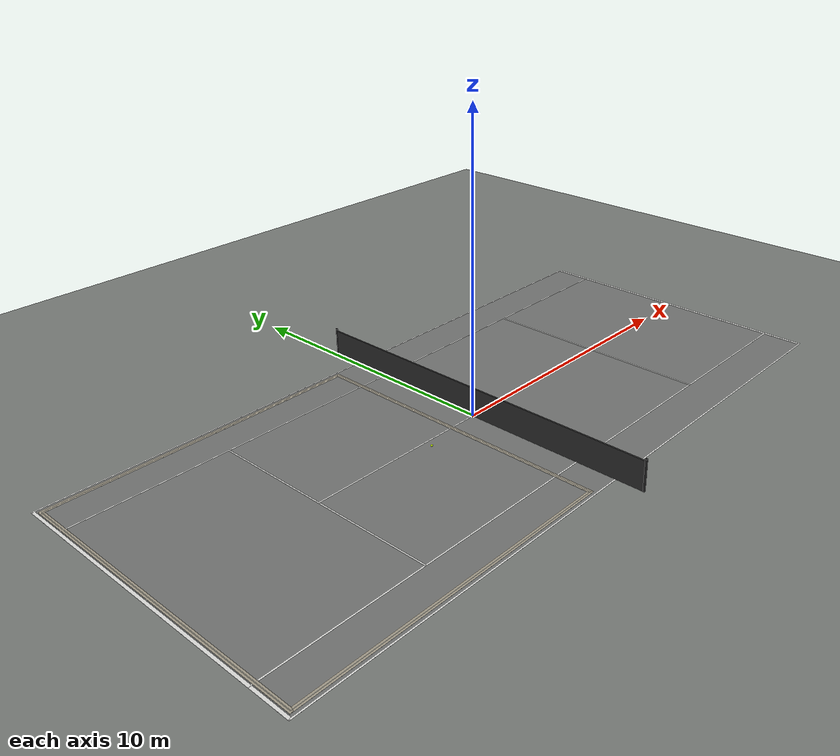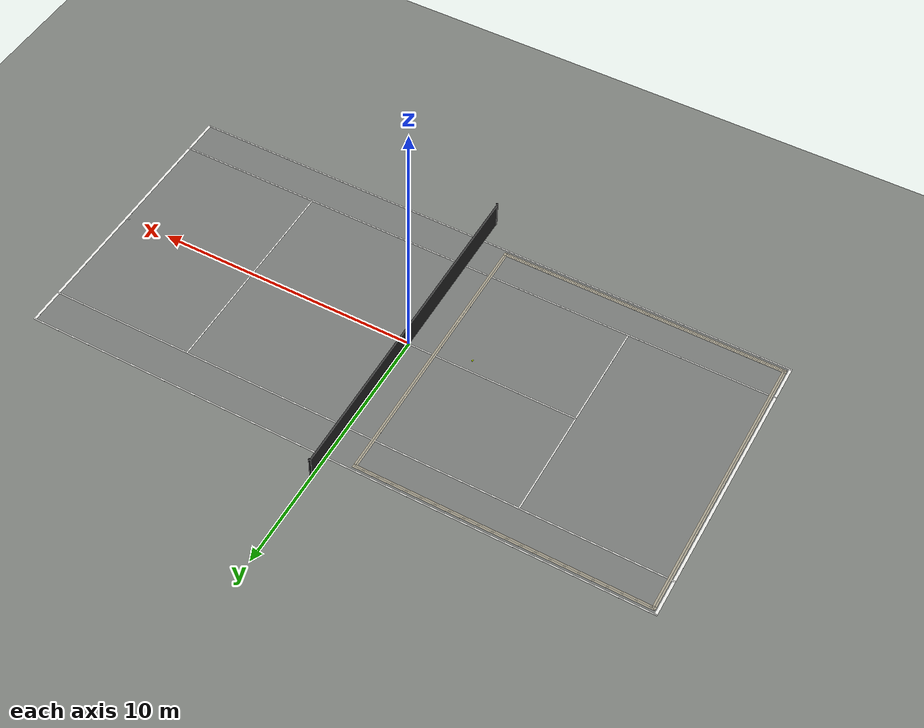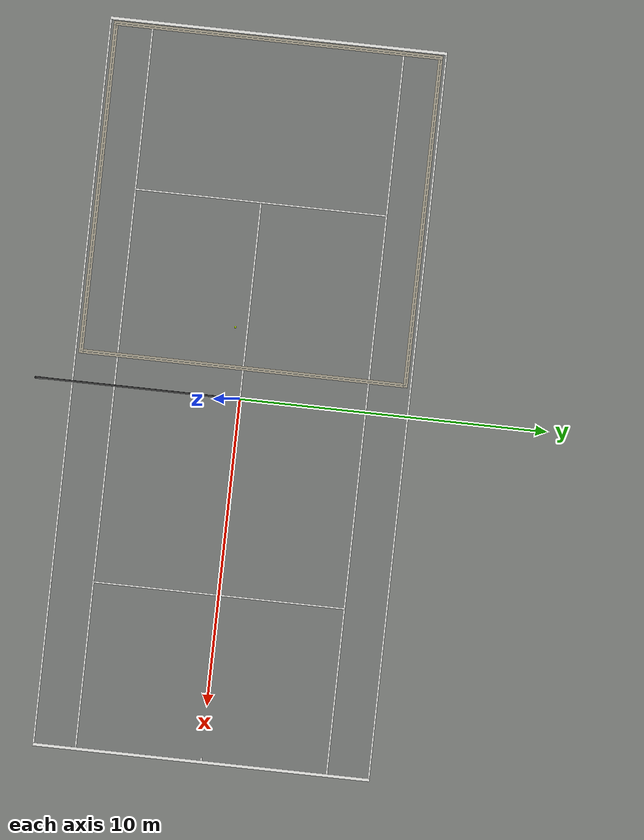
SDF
<sdf version="1.6">
 <world name="pickup_test_world">
  <model name="ground_plane">
   <static>true</static>
   <link name="link">
    <collision name="collision">
     <geometry><plane><normal>0 0 1</normal><size>100 100</size></plane></geometry>
     <surface>
      <contact><collide_bitmask>0xffff</collide_bitmask></contact>
      <friction><ode><mu>0.63</mu><mu2>0.63</mu2></ode></friction>
     </surface>
    </collision>
    <visual name="visual">
     <cast_shadows>false</cast_shadows>
     <geometry><plane><normal>0 0 1</normal><size>100 100</size></plane></geometry>
     <material>
      <ambient>0.463 0.474 0.460 1</ambient>
      <diffuse>0.463 0.474 0.460 1</diffuse>
      <specular>0 0 0 1</specular>
     </material>
    </visual>
   </link>
  </model>
  <model name="tennis_net">
   <static>true</static>
   <link name="net_link">
    <collision name="net_c">
     <pose>0 0 0.5 0 0 0</pose>
     <geometry><box><size>0.05 12.8 1.0</size></box></geometry>
    </collision>
    <visual name="net_v">
     <pose>0 0 0.5 0 0 0</pose>
     <geometry><box><size>0.05 12.8 1.0</size></box></geometry>
     <material><ambient>0.15 0.15 0.15 1</ambient><diffuse>0.2 0.2 0.2 1</diffuse></material>
    </visual>
    <collision name="post_l_c">
     <pose>0 6.4 0.535 0 0 0</pose>
     <geometry><cylinder><radius>0.04</radius><length>1.07</length></cylinder></geometry>
    </collision>
    <visual name="post_l_v">
     <pose>0 6.4 0.535 0 0 0</pose>
     <geometry><cylinder><radius>0.04</radius><length>1.07</length></cylinder></geometry>
     <material><ambient>0.1 0.1 0.1 1</ambient><diffuse>0.1 0.1 0.1 1</diffuse></material>
    </visual>
    <collision name="post_r_c">
     <pose>0 -6.4 0.535 0 0 0</pose>
     <geometry><cylinder><radius>0.04</radius><length>1.07</length></cylinder></geometry>
    </collision>
    <visual name="post_r_v">
     <pose>0 -6.4 0.535 0 0 0</pose>
     <geometry><cylinder><radius>0.04</radius><length>1.07</length></cylinder></geometry>
     <material><ambient>0.1 0.1 0.1 1</ambient><diffuse>0.1 0.1 0.1 1</diffuse></material>
    </visual>
   </link>
  </model>
  <model name="indoor_court">
   <static>true</static>
   <link name="court_link">
    <visual name="court_surface">
     <pose>0.0000 0.0000 0.0002 0 0 0</pose>
     <cast_shadows>false</cast_shadows>
     <geometry><box><size>23.7700 10.9700 0.0004</size></box></geometry>
     <material>
      <ambient>0.442 0.449 0.442 1</ambient>
      <diffuse>0.442 0.449 0.442 1</diffuse>
      <specular>0 0 0 1</specular>
     </material>
    </visual>
    <visual name="line_baseline_m1">
     <pose>-11.8350 0.0000 0.0006 0 0 0</pose>
     <cast_shadows>false</cast_shadows>
     <geometry><box><size>0.1000 10.9700 0.0004</size></box></geometry>
     <material>
      <ambient>0.866 0.866 0.855 1</ambient>
      <diffuse>0.866 0.866 0.855 1</diffuse>
      <specular>0 0 0 1</specular>
     </material>
    </visual>
    <visual name="line_service_m1">
     <pose>-6.4000 0.0000 0.0006 0 0 0</pose>
     <cast_shadows>false</cast_shadows>
     <geometry><box><size>0.0500 8.2300 0.0004</size></box></geometry>
     <material>
      <ambient>0.866 0.866 0.855 1</ambient>
      <diffuse>0.866 0.866 0.855 1</diffuse>
      <specular>0 0 0 1</specular>
     </material>
    </visual>
    <visual name="line_baseline_1">
     <pose>11.8350 0.0000 0.0006 0 0 0</pose>
     <cast_shadows>false</cast_shadows>
     <geometry><box><size>0.1000 10.9700 0.0004</size></box></geometry>
     <material>
      <ambient>0.866 0.866 0.855 1</ambient>
      <diffuse>0.866 0.866 0.855 1</diffuse>
      <specular>0 0 0 1</specular>
     </material>
    </visual>
    <visual name="line_service_1">
     <pose>6.4000 0.0000 0.0006 0 0 0</pose>
     <cast_shadows>false</cast_shadows>
     <geometry><box><size>0.0500 8.2300 0.0004</size></box></geometry>
     <material>
      <ambient>0.866 0.866 0.855 1</ambient>
      <diffuse>0.866 0.866 0.855 1</diffuse>
      <specular>0 0 0 1</specular>
     </material>
    </visual>
    <visual name="line_doubles_m1">
     <pose>0.0000 -5.4600 0.0006 0 0 0</pose>
     <cast_shadows>false</cast_shadows>
     <geometry><box><size>23.7700 0.0500 0.0004</size></box></geometry>
     <material>
      <ambient>0.866 0.866 0.855 1</ambient>
      <diffuse>0.866 0.866 0.855 1</diffuse>
      <specular>0 0 0 1</specular>
     </material>
    </visual>
    <visual name="line_singles_m1">
     <pose>0.0000 -4.0900 0.0006 0 0 0</pose>
     <cast_shadows>false</cast_shadows>
     <geometry><box><size>23.7700 0.0500 0.0004</size></box></geometry>
     <material>
      <ambient>0.866 0.866 0.855 1</ambient>
      <diffuse>0.866 0.866 0.855 1</diffuse>
      <specular>0 0 0 1</specular>
     </material>
    </visual>
    <visual name="line_doubles_1">
     <pose>0.0000 5.4600 0.0006 0 0 0</pose>
     <cast_shadows>false</cast_shadows>
     <geometry><box><size>23.7700 0.0500 0.0004</size></box></geometry>
     <material>
      <ambient>0.866 0.866 0.855 1</ambient>
      <diffuse>0.866 0.866 0.855 1</diffuse>
      <specular>0 0 0 1</specular>
     </material>
    </visual>
    <visual name="line_singles_1">
     <pose>0.0000 4.0900 0.0006 0 0 0</pose>
     <cast_shadows>false</cast_shadows>
     <geometry><box><size>23.7700 0.0500 0.0004</size></box></geometry>
     <material>
      <ambient>0.866 0.866 0.855 1</ambient>
      <diffuse>0.866 0.866 0.855 1</diffuse>
      <specular>0 0 0 1</specular>
     </material>
    </visual>
    <visual name="line_center_service">
     <pose>0.0000 0.0000 0.0006 0 0 0</pose>
     <cast_shadows>false</cast_shadows>
     <geometry><box><size>12.8000 0.0500 0.0004</size></box></geometry>
     <material>
      <ambient>0.866 0.866 0.855 1</ambient>
      <diffuse>0.866 0.866 0.855 1</diffuse>
      <specular>0 0 0 1</specular>
     </material>
    </visual>
    <visual name="line_center_mark_m1">
     <pose>-11.7350 0.0000 0.0006 0 0 0</pose>
     <cast_shadows>false</cast_shadows>
     <geometry><box><size>0.1000 0.0500 0.0004</size></box></geometry>
     <material>
      <ambient>0.866 0.866 0.855 1</ambient>
      <diffuse>0.866 0.866 0.855 1</diffuse>
      <specular>0 0 0 1</specular>
     </material>
    </visual>
    <visual name="line_center_mark_1">
     <pose>11.7350 0.0000 0.0006 0 0 0</pose>
     <cast_shadows>false</cast_shadows>
     <geometry><box><size>0.1000 0.0500 0.0004</size></box></geometry>
     <material>
      <ambient>0.866 0.866 0.855 1</ambient>
      <diffuse>0.866 0.866 0.855 1</diffuse>
      <specular>0 0 0 1</specular>
     </material>
    </visual>
    <visual name="yarn_baseline">
     <pose>-11.6850 0.0000 0.0007 0 0 0</pose>
     <cast_shadows>false</cast_shadows>
     <geometry><box><size>0.0140 10.5840 0.0010</size></box></geometry>
     <material>
      <ambient>0.845 0.848 0.784 1</ambient>
      <diffuse>0.845 0.848 0.784 1</diffuse>
      <specular>0 0 0 1</specular>
     </material>
    </visual>
    <visual name="yarn_halo_baseline">
     <pose>-11.6850 0.0000 0.0005 0 0 0</pose>
     <cast_shadows>false</cast_shadows>
     <geometry><box><size>0.1400 10.7100 0.0010</size></box></geometry>
     <material>
      <ambient>0.627 0.600 0.531 1</ambient>
      <diffuse>0.627 0.600 0.531 1</diffuse>
      <specular>0 0 0 1</specular>
     </material>
    </visual>
    <visual name="yarn_left">
     <pose>-6.3425 5.2850 0.0007 0 0 0</pose>
     <cast_shadows>false</cast_shadows>
     <geometry><box><size>10.6990 0.0140 0.0010</size></box></geometry>
     <material>
      <ambient>0.845 0.848 0.784 1</ambient>
      <diffuse>0.845 0.848 0.784 1</diffuse>
      <specular>0 0 0 1</specular>
     </material>
    </visual>
    <visual name="yarn_halo_left">
     <pose>-6.3425 5.2850 0.0005 0 0 0</pose>
     <cast_shadows>false</cast_shadows>
     <geometry><box><size>10.8250 0.1400 0.0010</size></box></geometry>
     <material>
      <ambient>0.627 0.600 0.531 1</ambient>
      <diffuse>0.627 0.600 0.531 1</diffuse>
      <specular>0 0 0 1</specular>
     </material>
    </visual>
    <visual name="yarn_right">
     <pose>-6.3425 -5.2850 0.0007 0 0 0</pose>
     <cast_shadows>false</cast_shadows>
     <geometry><box><size>10.6990 0.0140 0.0010</size></box></geometry>
     <material>
      <ambient>0.845 0.848 0.784 1</ambient>
      <diffuse>0.845 0.848 0.784 1</diffuse>
      <specular>0 0 0 1</specular>
     </material>
    </visual>
    <visual name="yarn_halo_right">
     <pose>-6.3425 -5.2850 0.0005 0 0 0</pose>
     <cast_shadows>false</cast_shadows>
     <geometry><box><size>10.8250 0.1400 0.0010</size></box></geometry>
     <material>
      <ambient>0.627 0.600 0.531 1</ambient>
      <diffuse>0.627 0.600 0.531 1</diffuse>
      <specular>0 0 0 1</specular>
     </material>
    </visual>
    <visual name="yarn_net">
     <pose>-1.0000 0.0000 0.0007 0 0 0</pose>
     <cast_shadows>false</cast_shadows>
     <geometry><box><size>0.0140 10.5840 0.0010</size></box></geometry>
     <material>
      <ambient>0.845 0.848 0.784 1</ambient>
      <diffuse>0.845 0.848 0.784 1</diffuse>
      <specular>0 0 0 1</specular>
     </material>
    </visual>
    <visual name="yarn_halo_net">
     <pose>-1.0000 0.0000 0.0005 0 0 0</pose>
     <cast_shadows>false</cast_shadows>
     <geometry><box><size>0.1400 10.7100 0.0010</size></box></geometry>
     <material>
      <ambient>0.627 0.600 0.531 1</ambient>
      <diffuse>0.627 0.600 0.531 1</diffuse>
      <specular>0 0 0 1</specular>
     </material>
    </visual>
   </link>
  </model>
  <model name="ball_5">
   <pose>-2.292 -0.382 0.1 0 0 0</pose>
   <link name="link">
    <inertial>
     <mass>0.0577</mass>
     <inertia><ixx>4.1890e-05</ixx><iyy>4.1890e-05</iyy><izz>4.1890e-05</izz></inertia>
    </inertial>
    <velocity_decay><linear>0</linear><angular>0.00107</angular></velocity_decay>
    <collision name="collision">
     <geometry><sphere><radius>0.033</radius></sphere></geometry>
     <surface>
      <friction><ode><mu>1.0</mu><mu2>1.0</mu2></ode></friction>
      <bounce><restitution_coefficient>0.75</restitution_coefficient><threshold>0.01</threshold></bounce>
      <contact><ode><kp>1000000.0</kp><kd>1.0</kd><min_depth>0.0</min_depth></ode></contact>
     </surface>
    </collision>
    <visual name="visual">
     <geometry><sphere><radius>0.033</radius></sphere></geometry>
     <material><ambient>0.8 1.0 0.0 1</ambient><diffuse>0.8 1.0 0.0 1</diffuse></material>
    </visual>
   </link>
  </model>
 </world>
</sdf>
